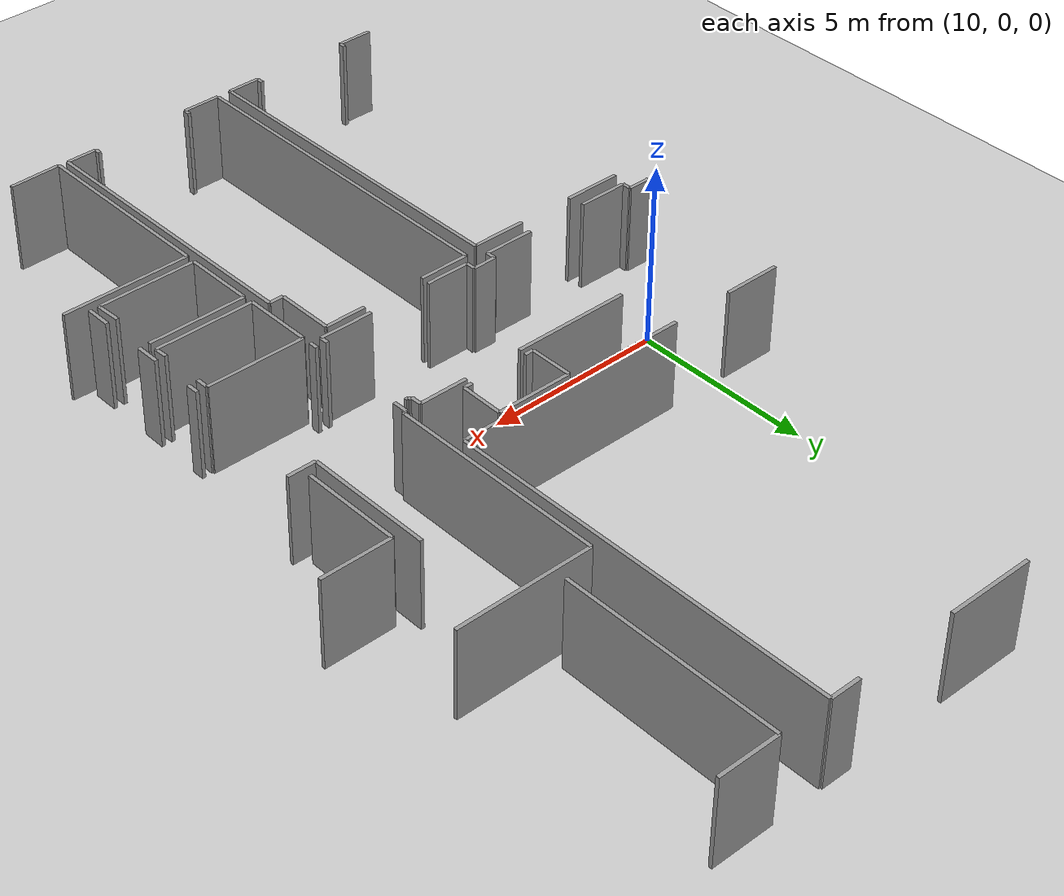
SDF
<sdf version="1.6">
 <world name="default">
  <model name="ground_plane">
   <static>1</static>
   <link name="link">
    <collision name="collision">
     <geometry><plane><normal>0 0 1</normal><size>100 100</size></plane></geometry>
     <surface><friction><ode><mu>100</mu><mu2>50</mu2></ode></friction></surface>
    </collision>
    <visual name="visual">
     <cast_shadows>0</cast_shadows>
     <geometry><plane><normal>0 0 1</normal><size>100 100</size></plane></geometry>
     <material>
      <script><uri>file://media/materials/scripts/gazebo.material</uri><name>Gazebo/Grey</name></script>
     </material>
    </visual>
   </link>
  </model>
  <model name="0510030967_A-40">
   <static>1</static>
   <link name="Wall_48">
    <collision name="Wall_48_Collision">
     <geometry><box><size>3.26393032615 0.1 2.5</size></box></geometry>
     <pose>1.63196516308 0 1.25 0 0 0</pose>
    </collision>
    <visual name="Wall_48_Visual">
     <pose>1.63196516308 0 1.25 0 0 0</pose>
     <geometry><box><size>3.26393032615 0.1 2.5</size></box></geometry>
     <material>
      <script><uri>file://media/materials/scripts/gazebo.material</uri><name>Gazebo/Grey</name></script>
      <ambient>1 1 1 1</ambient>
     </material>
    </visual>
    <pose>50.305203956 -12.2899183668 0 0 0 0.0</pose>
   </link>
   <link name="Wall_49">
    <collision name="Wall_49_Collision">
     <geometry><box><size>1.36059517311 0.1 2.5</size></box></geometry>
     <pose>0.680297586553 0 1.25 0 0 0</pose>
    </collision>
    <visual name="Wall_49_Visual">
     <pose>0.680297586553 0 1.25 0 0 0</pose>
     <geometry><box><size>1.36059517311 0.1 2.5</size></box></geometry>
     <material>
      <script><uri>file://media/materials/scripts/gazebo.material</uri><name>Gazebo/Grey</name></script>
      <ambient>1 1 1 1</ambient>
     </material>
    </visual>
    <pose>55.1893559486 -12.2899183668 0 0 0 0.0</pose>
   </link>
   <link name="Wall_50">
    <collision name="Wall_50_Collision">
     <geometry><box><size>0.29365089441 0.1 2.5</size></box></geometry>
     <pose>0.146825447205 0 1.25 0 0 0</pose>
    </collision>
    <visual name="Wall_50_Visual">
     <pose>0.146825447205 0 1.25 0 0 0</pose>
     <geometry><box><size>0.29365089441 0.1 2.5</size></box></geometry>
     <material>
      <script><uri>file://media/materials/scripts/gazebo.material</uri><name>Gazebo/Grey</name></script>
      <ambient>1 1 1 1</ambient>
     </material>
    </visual>
    <pose>56.5499511217 -12.2899183668 0 0 0 -1.57079632679</pose>
   </link>
   <link name="Wall_51">
    <collision name="Wall_51_Collision">
     <geometry><box><size>0.102581030127 0.1 2.5</size></box></geometry>
     <pose>0.0512905150634 0 1.25 0 0 0</pose>
    </collision>
    <visual name="Wall_51_Visual">
     <pose>0.0512905150634 0 1.25 0 0 0</pose>
     <geometry><box><size>0.102581030127 0.1 2.5</size></box></geometry>
     <material>
      <script><uri>file://media/materials/scripts/gazebo.material</uri><name>Gazebo/Grey</name></script>
      <ambient>1 1 1 1</ambient>
     </material>
    </visual>
    <pose>56.5499511217 -12.5835692612 0 0 0 0.0</pose>
   </link>
   <link name="Wall_52">
    <collision name="Wall_52_Collision">
     <geometry><box><size>0.0933131895337 0.1 2.5</size></box></geometry>
     <pose>0.0466565947668 0 1.25 0 0 0</pose>
    </collision>
    <visual name="Wall_52_Visual">
     <pose>0.0466565947668 0 1.25 0 0 0</pose>
     <geometry><box><size>0.0933131895337 0.1 2.5</size></box></geometry>
     <material>
      <script><uri>file://media/materials/scripts/gazebo.material</uri><name>Gazebo/Grey</name></script>
      <ambient>1 1 1 1</ambient>
     </material>
    </visual>
    <pose>56.6525321518 -12.5835692612 0 0 0 -1.57079632679</pose>
   </link>
   <link name="Wall_53">
    <collision name="Wall_53_Collision">
     <geometry><box><size>0.228141226656 0.1 2.5</size></box></geometry>
     <pose>0.114070613328 0 1.25 0 0 0</pose>
    </collision>
    <visual name="Wall_53_Visual">
     <pose>0.114070613328 0 1.25 0 0 0</pose>
     <geometry><box><size>0.228141226656 0.1 2.5</size></box></geometry>
     <material>
      <script><uri>file://media/materials/scripts/gazebo.material</uri><name>Gazebo/Grey</name></script>
      <ambient>1 1 1 1</ambient>
     </material>
    </visual>
    <pose>56.6525321518 -15.4301928473 0 0 0 -1.57079632679</pose>
   </link>
   <link name="Wall_54">
    <collision name="Wall_54_Collision">
     <geometry><box><size>1.49656582071 0.1 2.5</size></box></geometry>
     <pose>0.748282910356 0 1.25 0 0 0</pose>
    </collision>
    <visual name="Wall_54_Visual">
     <pose>0.748282910356 0 1.25 0 0 0</pose>
     <geometry><box><size>1.49656582071 0.1 2.5</size></box></geometry>
     <material>
      <script><uri>file://media/materials/scripts/gazebo.material</uri><name>Gazebo/Grey</name></script>
      <ambient>1 1 1 1</ambient>
     </material>
    </visual>
    <pose>56.6525321518 -15.6583340739 0 0 0 3.14159265359</pose>
   </link>
   <link name="Wall_55">
    <collision name="Wall_55_Collision">
     <geometry><box><size>1.23833585131 0.1 2.5</size></box></geometry>
     <pose>0.619167925654 0 1.25 0 0 0</pose>
    </collision>
    <visual name="Wall_55_Visual">
     <pose>0.619167925654 0 1.25 0 0 0</pose>
     <geometry><box><size>1.23833585131 0.1 2.5</size></box></geometry>
     <material>
      <script><uri>file://media/materials/scripts/gazebo.material</uri><name>Gazebo/Grey</name></script>
      <ambient>1 1 1 1</ambient>
     </material>
    </visual>
    <pose>53.4058679396 -15.6583340739 0 0 0 3.14159265359</pose>
   </link>
   <link name="Wall_56">
    <collision name="Wall_56_Collision">
     <geometry><box><size>0.257468229081 0.1 2.5</size></box></geometry>
     <pose>0.12873411454 0 1.25 0 0 0</pose>
    </collision>
    <visual name="Wall_56_Visual">
     <pose>0.12873411454 0 1.25 0 0 0</pose>
     <geometry><box><size>0.257468229081 0.1 2.5</size></box></geometry>
     <material>
      <script><uri>file://media/materials/scripts/gazebo.material</uri><name>Gazebo/Grey</name></script>
      <ambient>1 1 1 1</ambient>
     </material>
    </visual>
    <pose>52.1675320883 -15.6583340739 0 0 0 1.57079632679</pose>
   </link>
   <link name="Wall_57">
    <collision name="Wall_57_Collision">
     <geometry><box><size>0.652811456574 0.1 2.5</size></box></geometry>
     <pose>0.326405728287 0 1.25 0 0 0</pose>
    </collision>
    <visual name="Wall_57_Visual">
     <pose>0.326405728287 0 1.25 0 0 0</pose>
     <geometry><box><size>0.652811456574 0.1 2.5</size></box></geometry>
     <material>
      <script><uri>file://media/materials/scripts/gazebo.material</uri><name>Gazebo/Grey</name></script>
      <ambient>1 1 1 1</ambient>
     </material>
    </visual>
    <pose>52.1675320883 -15.4008658448 0 0 0 3.14159265359</pose>
   </link>
   <link name="Wall_58">
    <collision name="Wall_58_Collision">
     <geometry><box><size>0.259245623167 0.1 2.5</size></box></geometry>
     <pose>0.129622811584 0 1.25 0 0 0</pose>
    </collision>
    <visual name="Wall_58_Visual">
     <pose>0.129622811584 0 1.25 0 0 0</pose>
     <geometry><box><size>0.259245623167 0.1 2.5</size></box></geometry>
     <material>
      <script><uri>file://media/materials/scripts/gazebo.material</uri><name>Gazebo/Grey</name></script>
      <ambient>1 1 1 1</ambient>
     </material>
    </visual>
    <pose>51.5147206317 -15.4008658448 0 0 0 -1.57079632679</pose>
   </link>
   <link name="Wall_59">
    <collision name="Wall_59_Collision">
     <geometry><box><size>1.40160219381 0.1 2.5</size></box></geometry>
     <pose>0.700801096906 0 1.25 0 0 0</pose>
    </collision>
    <visual name="Wall_59_Visual">
     <pose>0.700801096906 0 1.25 0 0 0</pose>
     <geometry><box><size>1.40160219381 0.1 2.5</size></box></geometry>
     <material>
      <script><uri>file://media/materials/scripts/gazebo.material</uri><name>Gazebo/Grey</name></script>
      <ambient>1 1 1 1</ambient>
     </material>
    </visual>
    <pose>51.5147206317 -15.660111468 0 0 0 3.14159265359</pose>
   </link>
   <link name="Wall_60">
    <collision name="Wall_60_Collision">
     <geometry><box><size>1.39360392042 0.1 2.5</size></box></geometry>
     <pose>0.696801960212 0 1.25 0 0 0</pose>
    </collision>
    <visual name="Wall_60_Visual">
     <pose>0.696801960212 0 1.25 0 0 0</pose>
     <geometry><box><size>1.39360392042 0.1 2.5</size></box></geometry>
     <material>
      <script><uri>file://media/materials/scripts/gazebo.material</uri><name>Gazebo/Grey</name></script>
      <ambient>1 1 1 1</ambient>
     </material>
    </visual>
    <pose>48.3529904656 -15.660111468 0 0 0 3.14159265359</pose>
   </link>
   <link name="Wall_61">
    <collision name="Wall_61_Collision">
     <geometry><box><size>0.256198661876 0.1 2.5</size></box></geometry>
     <pose>0.128099330938 0 1.25 0 0 0</pose>
    </collision>
    <visual name="Wall_61_Visual">
     <pose>0.128099330938 0 1.25 0 0 0</pose>
     <geometry><box><size>0.256198661876 0.1 2.5</size></box></geometry>
     <material>
      <script><uri>file://media/materials/scripts/gazebo.material</uri><name>Gazebo/Grey</name></script>
      <ambient>1 1 1 1</ambient>
     </material>
    </visual>
    <pose>46.9593865451 -15.660111468 0 0 0 1.57079632679</pose>
   </link>
   <link name="Wall_62">
    <collision name="Wall_62_Collision">
     <geometry><box><size>0.638846217325 0.1 2.5</size></box></geometry>
     <pose>0.319423108662 0 1.25 0 0 0</pose>
    </collision>
    <visual name="Wall_62_Visual">
     <pose>0.319423108662 0 1.25 0 0 0</pose>
     <geometry><box><size>0.638846217325 0.1 2.5</size></box></geometry>
     <material>
      <script><uri>file://media/materials/scripts/gazebo.material</uri><name>Gazebo/Grey</name></script>
      <ambient>1 1 1 1</ambient>
     </material>
    </visual>
    <pose>46.9593865451 -15.4039128061 0 0 0 3.14159265359</pose>
   </link>
   <link name="Wall_173">
    <collision name="Wall_173_Collision">
     <geometry><box><size>0.916246651517 0.1 2.5</size></box></geometry>
     <pose>0.458123325758 0 1.25 0 0 0</pose>
    </collision>
    <visual name="Wall_173_Visual">
     <pose>0.458123325758 0 1.25 0 0 0</pose>
     <geometry><box><size>0.916246651517 0.1 2.5</size></box></geometry>
     <material>
      <script><uri>file://media/materials/scripts/gazebo.material</uri><name>Gazebo/Grey</name></script>
      <ambient>1 1 1 1</ambient>
     </material>
    </visual>
    <pose>51.555473739 -25.7336194091 0 0 0 3.14159265359</pose>
   </link>
   <link name="Wall_174">
    <collision name="Wall_174_Collision">
     <geometry><box><size>0.198814224231 0.1 2.5</size></box></geometry>
     <pose>0.0994071121155 0 1.25 0 0 0</pose>
    </collision>
    <visual name="Wall_174_Visual">
     <pose>0.0994071121155 0 1.25 0 0 0</pose>
     <geometry><box><size>0.198814224231 0.1 2.5</size></box></geometry>
     <material>
      <script><uri>file://media/materials/scripts/gazebo.material</uri><name>Gazebo/Grey</name></script>
      <ambient>1 1 1 1</ambient>
     </material>
    </visual>
    <pose>50.6392270875 -25.7336194091 0 0 0 1.57079632679</pose>
   </link>
   <link name="Wall_175">
    <collision name="Wall_175_Collision">
     <geometry><box><size>0.166694173956 0.1 2.5</size></box></geometry>
     <pose>0.083347086978 0 1.25 0 0 0</pose>
    </collision>
    <visual name="Wall_175_Visual">
     <pose>0.083347086978 0 1.25 0 0 0</pose>
     <geometry><box><size>0.166694173956 0.1 2.5</size></box></geometry>
     <material>
      <script><uri>file://media/materials/scripts/gazebo.material</uri><name>Gazebo/Grey</name></script>
      <ambient>1 1 1 1</ambient>
     </material>
    </visual>
    <pose>47.8212957203 -25.5348051849 0 0 0 -1.57079632679</pose>
   </link>
   <link name="Wall_176">
    <collision name="Wall_176_Collision">
     <geometry><box><size>0.998895476532 0.1 2.5</size></box></geometry>
     <pose>0.499447738266 0 1.25 0 0 0</pose>
    </collision>
    <visual name="Wall_176_Visual">
     <pose>0.499447738266 0 1.25 0 0 0</pose>
     <geometry><box><size>0.998895476532 0.1 2.5</size></box></geometry>
     <material>
      <script><uri>file://media/materials/scripts/gazebo.material</uri><name>Gazebo/Grey</name></script>
      <ambient>1 1 1 1</ambient>
     </material>
    </visual>
    <pose>47.8212957203 -25.7014993589 0 0 0 3.14159265359</pose>
   </link>
   <link name="Wall_178">
    <collision name="Wall_178_Collision">
     <geometry><box><size>1.59597293283 0.1 2.5</size></box></geometry>
     <pose>0.797986466414 0 1.25 0 0 0</pose>
    </collision>
    <visual name="Wall_178_Visual">
     <pose>0.797986466414 0 1.25 0 0 0</pose>
     <geometry><box><size>1.59597293283 0.1 2.5</size></box></geometry>
     <material>
      <script><uri>file://media/materials/scripts/gazebo.material</uri><name>Gazebo/Grey</name></script>
      <ambient>1 1 1 1</ambient>
     </material>
    </visual>
    <pose>46.8224002438 -16.0790686455 0 0 0 0.0</pose>
   </link>
   <link name="Wall_179">
    <collision name="Wall_179_Collision">
     <geometry><box><size>1.52119542448 0.1 2.5</size></box></geometry>
     <pose>0.76059771224 0 1.25 0 0 0</pose>
    </collision>
    <visual name="Wall_179_Visual">
     <pose>0.76059771224 0 1.25 0 0 0</pose>
     <geometry><box><size>1.52119542448 0.1 2.5</size></box></geometry>
     <material>
      <script><uri>file://media/materials/scripts/gazebo.material</uri><name>Gazebo/Grey</name></script>
      <ambient>1 1 1 1</ambient>
     </material>
    </visual>
    <pose>50.0013965239 -16.0790686455 0 0 0 0.0</pose>
   </link>
   <link name="Wall_180">
    <collision name="Wall_180_Collision">
     <geometry><box><size>9.65460675843 0.1 2.5</size></box></geometry>
     <pose>4.82730337922 0 1.25 0 0 0</pose>
    </collision>
    <visual name="Wall_180_Visual">
     <pose>4.82730337922 0 1.25 0 0 0</pose>
     <geometry><box><size>9.65460675843 0.1 2.5</size></box></geometry>
     <material>
      <script><uri>file://media/materials/scripts/gazebo.material</uri><name>Gazebo/Grey</name></script>
      <ambient>1 1 1 1</ambient>
     </material>
    </visual>
    <pose>51.5225919484 -16.0790686455 0 0 0 -1.56739050665</pose>
   </link>
   <link name="Wall_181">
    <collision name="Wall_181_Collision">
     <geometry><box><size>0.861909175162 0.1 2.5</size></box></geometry>
     <pose>0.430954587581 0 1.25 0 0 0</pose>
    </collision>
    <visual name="Wall_181_Visual">
     <pose>0.430954587581 0 1.25 0 0 0</pose>
     <geometry><box><size>0.861909175162 0.1 2.5</size></box></geometry>
     <material>
      <script><uri>file://media/materials/scripts/gazebo.material</uri><name>Gazebo/Grey</name></script>
      <ambient>1 1 1 1</ambient>
     </material>
    </visual>
    <pose>56.7204539972 -25.713687204 0 0 0 3.14159265359</pose>
   </link>
   <link name="Wall_182">
    <collision name="Wall_182_Collision">
     <geometry><box><size>0.176469841431 0.1 2.5</size></box></geometry>
     <pose>0.0882349207155 0 1.25 0 0 0</pose>
    </collision>
    <visual name="Wall_182_Visual">
     <pose>0.0882349207155 0 1.25 0 0 0</pose>
     <geometry><box><size>0.176469841431 0.1 2.5</size></box></geometry>
     <material>
      <script><uri>file://media/materials/scripts/gazebo.material</uri><name>Gazebo/Grey</name></script>
      <ambient>1 1 1 1</ambient>
     </material>
    </visual>
    <pose>55.8585448221 -25.713687204 0 0 0 1.57079632679</pose>
   </link>
   <link name="Wall_183">
    <collision name="Wall_183_Collision">
     <geometry><box><size>0.188784643315 0.1 2.5</size></box></geometry>
     <pose>0.0943923216575 0 1.25 0 0 0</pose>
    </collision>
    <visual name="Wall_183_Visual">
     <pose>0.0943923216575 0 1.25 0 0 0</pose>
     <geometry><box><size>0.188784643315 0.1 2.5</size></box></geometry>
     <material>
      <script><uri>file://media/materials/scripts/gazebo.material</uri><name>Gazebo/Grey</name></script>
      <ambient>1 1 1 1</ambient>
     </material>
    </visual>
    <pose>53.0349004025 -25.5372173626 0 0 0 -1.57079632679</pose>
   </link>
   <link name="Wall_184">
    <collision name="Wall_184_Collision">
     <geometry><box><size>1.06707123542 0.1 2.5</size></box></geometry>
     <pose>0.533535617708 0 1.25 0 0 0</pose>
    </collision>
    <visual name="Wall_184_Visual">
     <pose>0.533535617708 0 1.25 0 0 0</pose>
     <geometry><box><size>1.06707123542 0.1 2.5</size></box></geometry>
     <material>
      <script><uri>file://media/materials/scripts/gazebo.material</uri><name>Gazebo/Grey</name></script>
      <ambient>1 1 1 1</ambient>
     </material>
    </visual>
    <pose>53.0349004025 -25.7260020059 0 0 0 3.14159265359</pose>
   </link>
   <link name="Wall_185">
    <collision name="Wall_185_Collision">
     <geometry><box><size>9.80410578034 0.1 2.5</size></box></geometry>
     <pose>4.90205289017 0 1.25 0 0 0</pose>
    </collision>
    <visual name="Wall_185_Visual">
     <pose>4.90205289017 0 1.25 0 0 0</pose>
     <geometry><box><size>9.80410578034 0.1 2.5</size></box></geometry>
     <material>
      <script><uri>file://media/materials/scripts/gazebo.material</uri><name>Gazebo/Grey</name></script>
      <ambient>1 1 1 1</ambient>
     </material>
    </visual>
    <pose>51.967829167 -25.7260020059 0 0 0 1.57079632679</pose>
   </link>
   <link name="Wall_186">
    <collision name="Wall_186_Collision">
     <geometry><box><size>1.40185610725 0.1 2.5</size></box></geometry>
     <pose>0.700928053627 0 1.25 0 0 0</pose>
    </collision>
    <visual name="Wall_186_Visual">
     <pose>0.700928053627 0 1.25 0 0 0</pose>
     <geometry><box><size>1.40185610725 0.1 2.5</size></box></geometry>
     <material>
      <script><uri>file://media/materials/scripts/gazebo.material</uri><name>Gazebo/Grey</name></script>
      <ambient>1 1 1 1</ambient>
     </material>
    </visual>
    <pose>51.967829167 -15.9218962256 0 0 0 0.0</pose>
   </link>
   <link name="Wall_187">
    <collision name="Wall_187_Collision">
     <geometry><box><size>1.14540353194 0.1 2.5</size></box></geometry>
     <pose>0.572701765968 0 1.25 0 0 0</pose>
    </collision>
    <visual name="Wall_187_Visual">
     <pose>0.572701765968 0 1.25 0 0 0</pose>
     <geometry><box><size>1.14540353194 0.1 2.5</size></box></geometry>
     <material>
      <script><uri>file://media/materials/scripts/gazebo.material</uri><name>Gazebo/Grey</name></script>
      <ambient>1 1 1 1</ambient>
     </material>
    </visual>
    <pose>55.1403506545 -15.9218962256 0 0 0 0.0</pose>
   </link>
   <link name="Wall_188">
    <collision name="Wall_188_Collision">
     <geometry><box><size>1.60473294654 0.1 2.5</size></box></geometry>
     <pose>0.802366473269 0 1.25 0 0 0</pose>
    </collision>
    <visual name="Wall_188_Visual">
     <pose>0.802366473269 0 1.25 0 0 0</pose>
     <geometry><box><size>1.60473294654 0.1 2.5</size></box></geometry>
     <material>
      <script><uri>file://media/materials/scripts/gazebo.material</uri><name>Gazebo/Grey</name></script>
      <ambient>1 1 1 1</ambient>
     </material>
    </visual>
    <pose>56.2857541864 -15.9218962256 0 0 0 -1.57079632679</pose>
   </link>
   <link name="Wall_189">
    <collision name="Wall_189_Collision">
     <geometry><box><size>0.400040626151 0.1 2.5</size></box></geometry>
     <pose>0.200020313075 0 1.25 0 0 0</pose>
    </collision>
    <visual name="Wall_189_Visual">
     <pose>0.200020313075 0 1.25 0 0 0</pose>
     <geometry><box><size>0.400040626151 0.1 2.5</size></box></geometry>
     <material>
      <script><uri>file://media/materials/scripts/gazebo.material</uri><name>Gazebo/Grey</name></script>
      <ambient>1 1 1 1</ambient>
     </material>
    </visual>
    <pose>56.2857541864 -17.5266291721 0 0 0 0.0</pose>
   </link>
   <link name="Wall_190">
    <collision name="Wall_190_Collision">
     <geometry><box><size>8.18713139488 0.1 2.5</size></box></geometry>
     <pose>4.09356569744 0 1.25 0 0 0</pose>
    </collision>
    <visual name="Wall_190_Visual">
     <pose>4.09356569744 0 1.25 0 0 0</pose>
     <geometry><box><size>8.18713139488 0.1 2.5</size></box></geometry>
     <material>
      <script><uri>file://media/materials/scripts/gazebo.material</uri><name>Gazebo/Grey</name></script>
      <ambient>1 1 1 1</ambient>
     </material>
    </visual>
    <pose>56.6857948125 -17.5266291721 0 0 0 -1.5665629407</pose>
   </link>
   <link name="Wall_201">
    <collision name="Wall_201_Collision">
     <geometry><box><size>0.239440374776 0.1 2.5</size></box></geometry>
     <pose>0.119720187388 0 1.25 0 0 0</pose>
    </collision>
    <visual name="Wall_201_Visual">
     <pose>0.119720187388 0 1.25 0 0 0</pose>
     <geometry><box><size>0.239440374776 0.1 2.5</size></box></geometry>
     <material>
      <script><uri>file://media/materials/scripts/gazebo.material</uri><name>Gazebo/Grey</name></script>
      <ambient>1 1 1 1</ambient>
     </material>
    </visual>
    <pose>55.437556337 -12.0794241243 0 0 0 3.14159265359</pose>
   </link>
   <link name="Wall_202">
    <collision name="Wall_202_Collision">
     <geometry><box><size>0.246803864563 0.1 2.5</size></box></geometry>
     <pose>0.123401932281 0 1.25 0 0 0</pose>
    </collision>
    <visual name="Wall_202_Visual">
     <pose>0.123401932281 0 1.25 0 0 0</pose>
     <geometry><box><size>0.246803864563 0.1 2.5</size></box></geometry>
     <material>
      <script><uri>file://media/materials/scripts/gazebo.material</uri><name>Gazebo/Grey</name></script>
      <ambient>1 1 1 1</ambient>
     </material>
    </visual>
    <pose>53.5866543095 -12.0794241243 0 0 0 3.14159265359</pose>
   </link>
   <link name="Wall_203">
    <collision name="Wall_203_Collision">
     <geometry><box><size>1.1904731677 0.1 2.5</size></box></geometry>
     <pose>0.595236583849 0 1.25 0 0 0</pose>
    </collision>
    <visual name="Wall_203_Visual">
     <pose>0.595236583849 0 1.25 0 0 0</pose>
     <geometry><box><size>1.1904731677 0.1 2.5</size></box></geometry>
     <material>
      <script><uri>file://media/materials/scripts/gazebo.material</uri><name>Gazebo/Grey</name></script>
      <ambient>1 1 1 1</ambient>
     </material>
    </visual>
    <pose>53.339850445 -12.0794241243 0 0 0 1.57079632679</pose>
   </link>
   <link name="Wall_204">
    <collision name="Wall_204_Collision">
     <geometry><box><size>2.11230591491 0.1 2.5</size></box></geometry>
     <pose>1.05615295746 0 1.25 0 0 0</pose>
    </collision>
    <visual name="Wall_204_Visual">
     <pose>1.05615295746 0 1.25 0 0 0</pose>
     <geometry><box><size>2.11230591491 0.1 2.5</size></box></geometry>
     <material>
      <script><uri>file://media/materials/scripts/gazebo.material</uri><name>Gazebo/Grey</name></script>
      <ambient>1 1 1 1</ambient>
     </material>
    </visual>
    <pose>53.339850445 -10.8889509566 0 0 0 0.0</pose>
   </link>
   <link name="Wall_205">
    <collision name="Wall_205_Collision">
     <geometry><box><size>1.19056269204 0.1 2.5</size></box></geometry>
     <pose>0.595281346019 0 1.25 0 0 0</pose>
    </collision>
    <visual name="Wall_205_Visual">
     <pose>0.595281346019 0 1.25 0 0 0</pose>
     <geometry><box><size>1.19056269204 0.1 2.5</size></box></geometry>
     <material>
      <script><uri>file://media/materials/scripts/gazebo.material</uri><name>Gazebo/Grey</name></script>
      <ambient>1 1 1 1</ambient>
     </material>
    </visual>
    <pose>55.4521563599 -10.8889509566 0 0 0 -1.58305976232</pose>
   </link>
   <link name="Wall_237">
    <collision name="Wall_237_Collision">
     <geometry><box><size>6.55756852489 0.1 2.5</size></box></geometry>
     <pose>3.27878426244 0 1.25 0 0 0</pose>
    </collision>
    <visual name="Wall_237_Visual">
     <pose>3.27878426244 0 1.25 0 0 0</pose>
     <geometry><box><size>6.55756852489 0.1 2.5</size></box></geometry>
     <material>
      <script><uri>file://media/materials/scripts/gazebo.material</uri><name>Gazebo/Grey</name></script>
      <ambient>1 1 1 1</ambient>
     </material>
    </visual>
    <pose>56.6889687306 -10.6754097528 0 0 0 3.14159265359</pose>
   </link>
   <link name="Wall_238">
    <collision name="Wall_238_Collision">
     <geometry><box><size>1.6007972882 0.1 2.5</size></box></geometry>
     <pose>0.800398644102 0 1.25 0 0 0</pose>
    </collision>
    <visual name="Wall_238_Visual">
     <pose>0.800398644102 0 1.25 0 0 0</pose>
     <geometry><box><size>1.6007972882 0.1 2.5</size></box></geometry>
     <material>
      <script><uri>file://media/materials/scripts/gazebo.material</uri><name>Gazebo/Grey</name></script>
      <ambient>1 1 1 1</ambient>
     </material>
    </visual>
    <pose>48.3760965887 -10.6754097528 0 0 0 3.14159265359</pose>
   </link>
   <link name="Wall_241">
    <collision name="Wall_241_Collision">
     <geometry><box><size>2.39859331954 0.1 2.5</size></box></geometry>
     <pose>1.19929665977 0 1.25 0 0 0</pose>
    </collision>
    <visual name="Wall_241_Visual">
     <pose>1.19929665977 0 1.25 0 0 0</pose>
     <geometry><box><size>2.39859331954 0.1 2.5</size></box></geometry>
     <material>
      <script><uri>file://media/materials/scripts/gazebo.material</uri><name>Gazebo/Grey</name></script>
      <ambient>1 1 1 1</ambient>
     </material>
    </visual>
    <pose>50.6388462173 -0.0172661139817 0 0 0 0.0</pose>
   </link>
   <link name="Wall_242">
    <collision name="Wall_242_Collision">
     <geometry><box><size>0.845912628385 0.1 2.5</size></box></geometry>
     <pose>0.422956314192 0 1.25 0 0 0</pose>
    </collision>
    <visual name="Wall_242_Visual">
     <pose>0.422956314192 0 1.25 0 0 0</pose>
     <geometry><box><size>0.845912628385 0.1 2.5</size></box></geometry>
     <material>
      <script><uri>file://media/materials/scripts/gazebo.material</uri><name>Gazebo/Grey</name></script>
      <ambient>1 1 1 1</ambient>
     </material>
    </visual>
    <pose>55.8273134688 -0.0172661139817 0 0 0 0.0</pose>
   </link>
   <link name="Wall_243">
    <collision name="Wall_243_Collision">
     <geometry><box><size>10.6581552652 0.1 2.5</size></box></geometry>
     <pose>5.32907763259 0 1.25 0 0 0</pose>
    </collision>
    <visual name="Wall_243_Visual">
     <pose>5.32907763259 0 1.25 0 0 0</pose>
     <geometry><box><size>10.6581552652 0.1 2.5</size></box></geometry>
     <material>
      <script><uri>file://media/materials/scripts/gazebo.material</uri><name>Gazebo/Grey</name></script>
      <ambient>1 1 1 1</ambient>
     </material>
    </visual>
    <pose>56.6732260972 -0.0172661139817 0 0 0 -1.56931927578</pose>
   </link>
   <link name="Wall_246">
    <collision name="Wall_246_Collision">
     <geometry><box><size>0.239059504615 0.1 2.5</size></box></geometry>
     <pose>0.119529752307 0 1.25 0 0 0</pose>
    </collision>
    <visual name="Wall_246_Visual">
     <pose>0.119529752307 0 1.25 0 0 0</pose>
     <geometry><box><size>0.239059504615 0.1 2.5</size></box></geometry>
     <material>
      <script><uri>file://media/materials/scripts/gazebo.material</uri><name>Gazebo/Grey</name></script>
      <ambient>1 1 1 1</ambient>
     </material>
    </visual>
    <pose>56.9546891465 -15.6792819328 0 0 0 1.57079632679</pose>
   </link>
   <link name="Wall_247">
    <collision name="Wall_247_Collision">
     <geometry><box><size>0.400675409753 0.1 2.5</size></box></geometry>
     <pose>0.200337704876 0 1.25 0 0 0</pose>
    </collision>
    <visual name="Wall_247_Visual">
     <pose>0.200337704876 0 1.25 0 0 0</pose>
     <geometry><box><size>0.400675409753 0.1 2.5</size></box></geometry>
     <material>
      <script><uri>file://media/materials/scripts/gazebo.material</uri><name>Gazebo/Grey</name></script>
      <ambient>1 1 1 1</ambient>
     </material>
    </visual>
    <pose>56.9546891465 -12.7032894486 0 0 0 1.57079632679</pose>
   </link>
   <link name="Wall_248">
    <collision name="Wall_248_Collision">
     <geometry><box><size>0.0895044879201 0.1 2.5</size></box></geometry>
     <pose>0.04475224396 0 1.25 0 0 0</pose>
    </collision>
    <visual name="Wall_248_Visual">
     <pose>0.04475224396 0 1.25 0 0 0</pose>
     <geometry><box><size>0.0895044879201 0.1 2.5</size></box></geometry>
     <material>
      <script><uri>file://media/materials/scripts/gazebo.material</uri><name>Gazebo/Grey</name></script>
      <ambient>1 1 1 1</ambient>
     </material>
    </visual>
    <pose>56.9546891465 -12.3026140389 0 0 0 0.0</pose>
   </link>
   <link name="Wall_249">
    <collision name="Wall_249_Collision">
     <geometry><box><size>6.00187895946 0.1 2.5</size></box></geometry>
     <pose>3.00093947973 0 1.25 0 0 0</pose>
    </collision>
    <visual name="Wall_249_Visual">
     <pose>3.00093947973 0 1.25 0 0 0</pose>
     <geometry><box><size>6.00187895946 0.1 2.5</size></box></geometry>
     <material>
      <script><uri>file://media/materials/scripts/gazebo.material</uri><name>Gazebo/Grey</name></script>
      <ambient>1 1 1 1</ambient>
     </material>
    </visual>
    <pose>57.0441936344 -12.3026140389 0 0 0 1.57079632679</pose>
   </link>
   <link name="Wall_250">
    <collision name="Wall_250_Collision">
     <geometry><box><size>3.77137633781 0.1 2.5</size></box></geometry>
     <pose>1.8856881689 0 1.25 0 0 0</pose>
    </collision>
    <visual name="Wall_250_Visual">
     <pose>1.8856881689 0 1.25 0 0 0</pose>
     <geometry><box><size>3.77137633781 0.1 2.5</size></box></geometry>
     <material>
      <script><uri>file://media/materials/scripts/gazebo.material</uri><name>Gazebo/Grey</name></script>
      <ambient>1 1 1 1</ambient>
     </material>
    </visual>
    <pose>57.0441936344 -6.30073507941 0 0 0 0.0</pose>
   </link>
   <link name="Wall_253">
    <collision name="Wall_253_Collision">
     <geometry><box><size>3.48927850496 0.1 2.5</size></box></geometry>
     <pose>1.74463925248 0 1.25 0 0 0</pose>
    </collision>
    <visual name="Wall_253_Visual">
     <pose>1.74463925248 0 1.25 0 0 0</pose>
     <geometry><box><size>3.48927850496 0.1 2.5</size></box></geometry>
     <material>
      <script><uri>file://media/materials/scripts/gazebo.material</uri><name>Gazebo/Grey</name></script>
      <ambient>1 1 1 1</ambient>
     </material>
    </visual>
    <pose>59.546764508 -8.77994591644 0 0 0 -1.57079632679</pose>
   </link>
   <link name="Wall_254">
    <collision name="Wall_254_Collision">
     <geometry><box><size>0.793098632676 0.1 2.5</size></box></geometry>
     <pose>0.396549316338 0 1.25 0 0 0</pose>
    </collision>
    <visual name="Wall_254_Visual">
     <pose>0.396549316338 0 1.25 0 0 0</pose>
     <geometry><box><size>0.793098632676 0.1 2.5</size></box></geometry>
     <material>
      <script><uri>file://media/materials/scripts/gazebo.material</uri><name>Gazebo/Grey</name></script>
      <ambient>1 1 1 1</ambient>
     </material>
    </visual>
    <pose>59.546764508 -12.2692244214 0 0 0 0.0</pose>
   </link>
   <link name="Wall_264">
    <collision name="Wall_264_Collision">
     <geometry><box><size>2.72030164917 0.1 2.5</size></box></geometry>
     <pose>1.36015082458 0 1.25 0 0 0</pose>
    </collision>
    <visual name="Wall_264_Visual">
     <pose>1.36015082458 0 1.25 0 0 0</pose>
     <geometry><box><size>2.72030164917 0.1 2.5</size></box></geometry>
     <material>
      <script><uri>file://media/materials/scripts/gazebo.material</uri><name>Gazebo/Grey</name></script>
      <ambient>1 1 1 1</ambient>
     </material>
    </visual>
    <pose>59.9380451204 -11.9833178869 0 0 0 1.57079632679</pose>
   </link>
   <link name="Wall_265">
    <collision name="Wall_265_Collision">
     <geometry><box><size>1.95259436058 0.1 2.5</size></box></geometry>
     <pose>0.976297180291 0 1.25 0 0 0</pose>
    </collision>
    <visual name="Wall_265_Visual">
     <pose>0.976297180291 0 1.25 0 0 0</pose>
     <geometry><box><size>1.95259436058 0.1 2.5</size></box></geometry>
     <material>
      <script><uri>file://media/materials/scripts/gazebo.material</uri><name>Gazebo/Grey</name></script>
      <ambient>1 1 1 1</ambient>
     </material>
    </visual>
    <pose>59.9380451204 -9.26301623776 0 0 0 0.0</pose>
   </link>
   <link name="Wall_269">
    <collision name="Wall_269_Collision">
     <geometry><box><size>0.695468914647 0.1 2.5</size></box></geometry>
     <pose>0.347734457324 0 1.25 0 0 0</pose>
    </collision>
    <visual name="Wall_269_Visual">
     <pose>0.347734457324 0 1.25 0 0 0</pose>
     <geometry><box><size>0.695468914647 0.1 2.5</size></box></geometry>
     <material>
      <script><uri>file://media/materials/scripts/gazebo.material</uri><name>Gazebo/Grey</name></script>
      <ambient>1 1 1 1</ambient>
     </material>
    </visual>
    <pose>59.9898434624 -20.0812523011 0 0 0 1.57079632679</pose>
   </link>
   <link name="Wall_270">
    <collision name="Wall_270_Collision">
     <geometry><box><size>0.650145365445 0.1 2.5</size></box></geometry>
     <pose>0.325072682722 0 1.25 0 0 0</pose>
    </collision>
    <visual name="Wall_270_Visual">
     <pose>0.325072682722 0 1.25 0 0 0</pose>
     <geometry><box><size>0.650145365445 0.1 2.5</size></box></geometry>
     <material>
      <script><uri>file://media/materials/scripts/gazebo.material</uri><name>Gazebo/Grey</name></script>
      <ambient>1 1 1 1</ambient>
     </material>
    </visual>
    <pose>59.9898434624 -18.1263727195 0 0 0 1.57079632679</pose>
   </link>
   <link name="Wall_271">
    <collision name="Wall_271_Collision">
     <geometry><box><size>0.342275318344 0.1 2.5</size></box></geometry>
     <pose>0.171137659172 0 1.25 0 0 0</pose>
    </collision>
    <visual name="Wall_271_Visual">
     <pose>0.171137659172 0 1.25 0 0 0</pose>
     <geometry><box><size>0.342275318344 0.1 2.5</size></box></geometry>
     <material>
      <script><uri>file://media/materials/scripts/gazebo.material</uri><name>Gazebo/Grey</name></script>
      <ambient>1 1 1 1</ambient>
     </material>
    </visual>
    <pose>59.9898434624 -16.2677263321 0 0 0 1.57079632679</pose>
   </link>
   <link name="Wall_275">
    <collision name="Wall_275_Collision">
     <geometry><box><size>5.38423451445 0.1 2.5</size></box></geometry>
     <pose>2.69211725723 0 1.25 0 0 0</pose>
    </collision>
    <visual name="Wall_275_Visual">
     <pose>2.69211725723 0 1.25 0 0 0</pose>
     <geometry><box><size>5.38423451445 0.1 2.5</size></box></geometry>
     <material>
      <script><uri>file://media/materials/scripts/gazebo.material</uri><name>Gazebo/Grey</name></script>
      <ambient>1 1 1 1</ambient>
     </material>
    </visual>
    <pose>56.9757639621 -25.7340002793 0 0 0 1.57079632679</pose>
   </link>
   <link name="Wall_276">
    <collision name="Wall_276_Collision">
     <geometry><box><size>3.58106821385 0.1 2.5</size></box></geometry>
     <pose>1.79053410692 0 1.25 0 0 0</pose>
    </collision>
    <visual name="Wall_276_Visual">
     <pose>1.79053410692 0 1.25 0 0 0</pose>
     <geometry><box><size>3.58106821385 0.1 2.5</size></box></geometry>
     <material>
      <script><uri>file://media/materials/scripts/gazebo.material</uri><name>Gazebo/Grey</name></script>
      <ambient>1 1 1 1</ambient>
     </material>
    </visual>
    <pose>56.9757639621 -20.3497657649 0 0 0 0.0</pose>
   </link>
   <link name="Wall_280">
    <collision name="Wall_280_Collision">
     <geometry><box><size>1.44380619812 0.1 2.5</size></box></geometry>
     <pose>0.721903099059 0 1.25 0 0 0</pose>
    </collision>
    <visual name="Wall_280_Visual">
     <pose>0.721903099059 0 1.25 0 0 0</pose>
     <geometry><box><size>1.44380619812 0.1 2.5</size></box></geometry>
     <material>
      <script><uri>file://media/materials/scripts/gazebo.material</uri><name>Gazebo/Grey</name></script>
      <ambient>1 1 1 1</ambient>
     </material>
    </visual>
    <pose>58.4192618736 -25.70416545 0 0 0 -3.12092717023</pose>
   </link>
   <link name="Wall_281">
    <collision name="Wall_281_Collision">
     <geometry><box><size>2.75826170858 0.1 2.5</size></box></geometry>
     <pose>1.37913085429 0 1.25 0 0 0</pose>
    </collision>
    <visual name="Wall_281_Visual">
     <pose>1.37913085429 0 1.25 0 0 0</pose>
     <geometry><box><size>2.75826170858 0.1 2.5</size></box></geometry>
     <material>
      <script><uri>file://media/materials/scripts/gazebo.material</uri><name>Gazebo/Grey</name></script>
      <ambient>1 1 1 1</ambient>
     </material>
    </visual>
    <pose>59.742023944 -20.0641131438 0 0 0 3.14159265359</pose>
   </link>
   <link name="Wall_282">
    <collision name="Wall_282_Collision">
     <geometry><box><size>1.94535782752 0.1 2.5</size></box></geometry>
     <pose>0.972678913758 0 1.25 0 0 0</pose>
    </collision>
    <visual name="Wall_282_Visual">
     <pose>0.972678913758 0 1.25 0 0 0</pose>
     <geometry><box><size>1.94535782752 0.1 2.5</size></box></geometry>
     <material>
      <script><uri>file://media/materials/scripts/gazebo.material</uri><name>Gazebo/Grey</name></script>
      <ambient>1 1 1 1</ambient>
     </material>
    </visual>
    <pose>56.9837622355 -20.0641131438 0 0 0 1.57079632679</pose>
   </link>
   <link name="Wall_283">
    <collision name="Wall_283_Collision">
     <geometry><box><size>2.72931557632 0.1 2.5</size></box></geometry>
     <pose>1.36465778816 0 1.25 0 0 0</pose>
    </collision>
    <visual name="Wall_283_Visual">
     <pose>1.36465778816 0 1.25 0 0 0</pose>
     <geometry><box><size>2.72931557632 0.1 2.5</size></box></geometry>
     <material>
      <script><uri>file://media/materials/scripts/gazebo.material</uri><name>Gazebo/Grey</name></script>
      <ambient>1 1 1 1</ambient>
     </material>
    </visual>
    <pose>56.9837622355 -18.1187553163 0 0 0 0.0</pose>
   </link>
   <link name="Wall_284">
    <collision name="Wall_284_Collision">
     <geometry><box><size>0.691631421129 0.1 2.5</size></box></geometry>
     <pose>0.345815710565 0 1.25 0 0 0</pose>
    </collision>
    <visual name="Wall_284_Visual">
     <pose>0.345815710565 0 1.25 0 0 0</pose>
     <geometry><box><size>0.691631421129 0.1 2.5</size></box></geometry>
     <material>
      <script><uri>file://media/materials/scripts/gazebo.material</uri><name>Gazebo/Grey</name></script>
      <ambient>1 1 1 1</ambient>
     </material>
    </visual>
    <pose>59.7130778118 -19.3730877144 0 0 0 -1.52893213682</pose>
   </link>
   <link name="Wall_285">
    <collision name="Wall_285_Collision">
     <geometry><box><size>2.77730521665 0.1 2.5</size></box></geometry>
     <pose>1.38865260833 0 1.25 0 0 0</pose>
    </collision>
    <visual name="Wall_285_Visual">
     <pose>1.38865260833 0 1.25 0 0 0</pose>
     <geometry><box><size>2.77730521665 0.1 2.5</size></box></geometry>
     <material>
      <script><uri>file://media/materials/scripts/gazebo.material</uri><name>Gazebo/Grey</name></script>
      <ambient>1 1 1 1</ambient>
     </material>
    </visual>
    <pose>59.7371995887 -17.8308174743 0 0 0 3.14159265359</pose>
   </link>
   <link name="Wall_286">
    <collision name="Wall_286_Collision">
     <geometry><box><size>1.89914558127 0.1 2.5</size></box></geometry>
     <pose>0.949572790636 0 1.25 0 0 0</pose>
    </collision>
    <visual name="Wall_286_Visual">
     <pose>0.949572790636 0 1.25 0 0 0</pose>
     <geometry><box><size>1.89914558127 0.1 2.5</size></box></geometry>
     <material>
      <script><uri>file://media/materials/scripts/gazebo.material</uri><name>Gazebo/Grey</name></script>
      <ambient>1 1 1 1</ambient>
     </material>
    </visual>
    <pose>56.959894372 -17.8308174743 0 0 0 1.57079632679</pose>
   </link>
   <link name="Wall_287">
    <collision name="Wall_287_Collision">
     <geometry><box><size>2.75534170401 0.1 2.5</size></box></geometry>
     <pose>1.37767085201 0 1.25 0 0 0</pose>
    </collision>
    <visual name="Wall_287_Visual">
     <pose>1.37767085201 0 1.25 0 0 0</pose>
     <geometry><box><size>2.75534170401 0.1 2.5</size></box></geometry>
     <material>
      <script><uri>file://media/materials/scripts/gazebo.material</uri><name>Gazebo/Grey</name></script>
      <ambient>1 1 1 1</ambient>
     </material>
    </visual>
    <pose>56.959894372 -15.9316718931 0 0 0 0.0</pose>
   </link>
   <link name="Wall_288">
    <collision name="Wall_288_Collision">
     <geometry><box><size>0.345830106517 0.1 2.5</size></box></geometry>
     <pose>0.172915053258 0 1.25 0 0 0</pose>
    </collision>
    <visual name="Wall_288_Visual">
     <pose>0.172915053258 0 1.25 0 0 0</pose>
     <geometry><box><size>0.345830106517 0.1 2.5</size></box></geometry>
     <material>
      <script><uri>file://media/materials/scripts/gazebo.material</uri><name>Gazebo/Grey</name></script>
      <ambient>1 1 1 1</ambient>
     </material>
    </visual>
    <pose>59.715236076 -15.9316718931 0 0 0 -1.57079632679</pose>
   </link>
   <link name="Wall_289">
    <collision name="Wall_289_Collision">
     <geometry><box><size>0.361605591978 0.1 2.5</size></box></geometry>
     <pose>0.180802795989 0 1.25 0 0 0</pose>
    </collision>
    <visual name="Wall_289_Visual">
     <pose>0.180802795989 0 1.25 0 0 0</pose>
     <geometry><box><size>0.361605591978 0.1 2.5</size></box></geometry>
     <material>
      <script><uri>file://media/materials/scripts/gazebo.material</uri><name>Gazebo/Grey</name></script>
      <ambient>1 1 1 1</ambient>
     </material>
    </visual>
    <pose>59.715236076 -17.4698795181 0 0 0 -1.51002005491</pose>
   </link>
   <link name="Wall_321">
    <collision name="Wall_321_Collision">
     <geometry><box><size>5.9183414374 0.1 2.5</size></box></geometry>
     <pose>2.9591707187 0 1.25 0 0 0</pose>
    </collision>
    <visual name="Wall_321_Visual">
     <pose>2.9591707187 0 1.25 0 0 0</pose>
     <geometry><box><size>5.9183414374 0.1 2.5</size></box></geometry>
     <material>
      <script><uri>file://media/materials/scripts/gazebo.material</uri><name>Gazebo/Grey</name></script>
      <ambient>1 1 1 1</ambient>
     </material>
    </visual>
    <pose>58.1110109564 -5.94182843069 0 0 0 1.57079632679</pose>
   </link>
   <link name="Wall_322">
    <collision name="Wall_322_Collision">
     <geometry><box><size>1.70553658258 0.1 2.5</size></box></geometry>
     <pose>0.85276829129 0 1.25 0 0 0</pose>
    </collision>
    <visual name="Wall_322_Visual">
     <pose>0.85276829129 0 1.25 0 0 0</pose>
     <geometry><box><size>1.70553658258 0.1 2.5</size></box></geometry>
     <material>
      <script><uri>file://media/materials/scripts/gazebo.material</uri><name>Gazebo/Grey</name></script>
      <ambient>1 1 1 1</ambient>
     </material>
    </visual>
    <pose>58.1110109564 -0.023486993284 0 0 0 0.0</pose>
   </link>
   <pose>-38.7 12.8945376871 0 0 0 0</pose>
  </model>
 </world>
</sdf>
